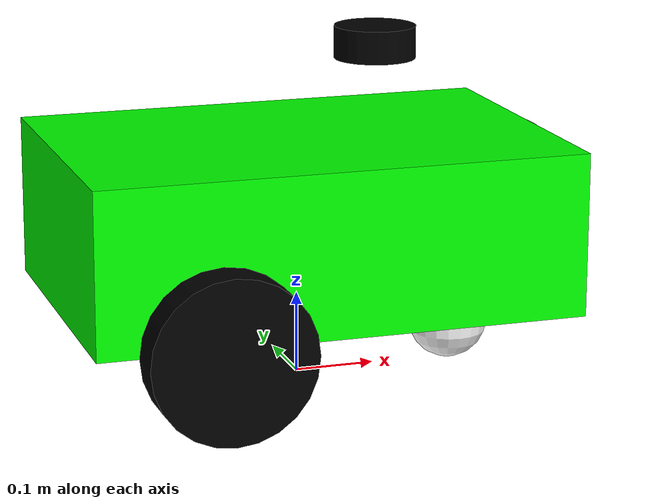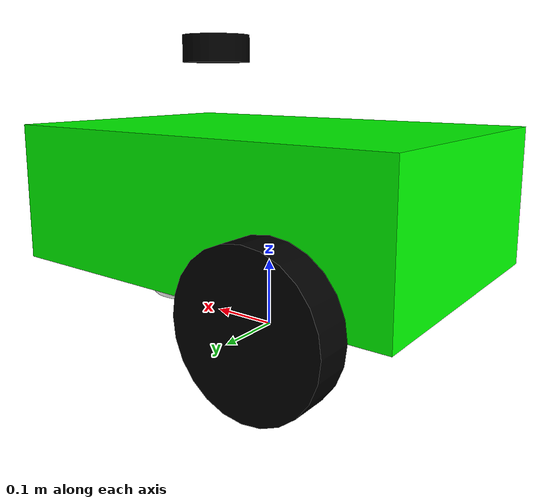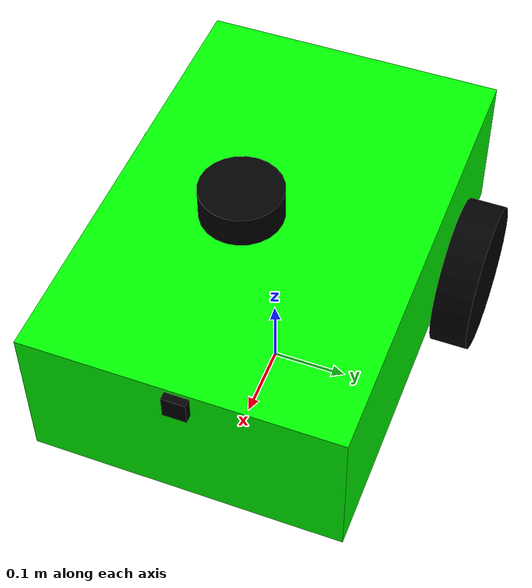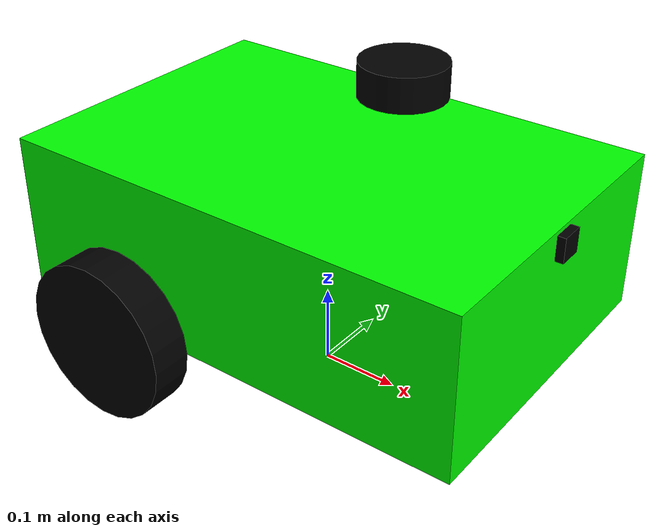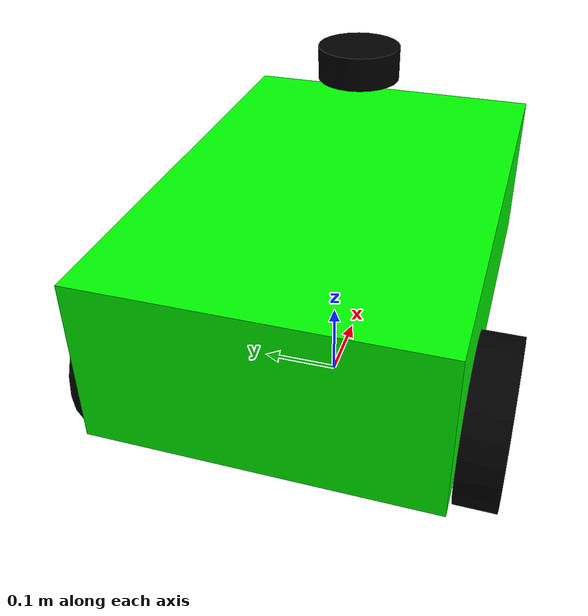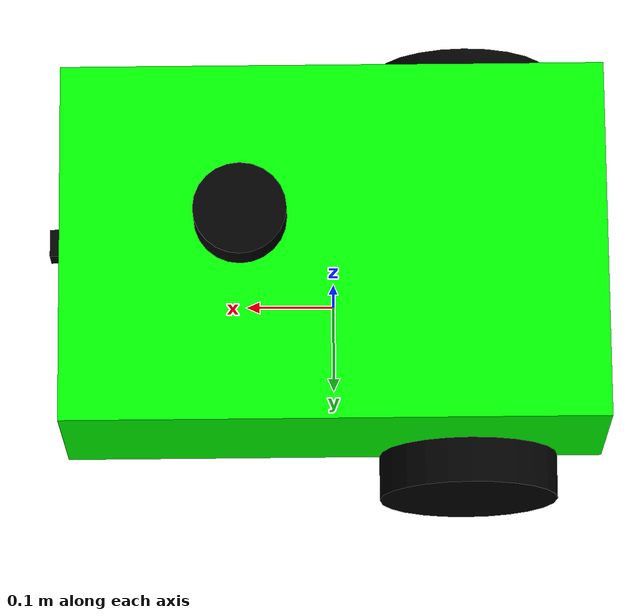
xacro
<?xml version="1.0"?>
<robot name="my_robot" xmlns:xacro="http://www.ros.org/wiki/xacro">

    <xacro:include filename="camera.xacro" />
    <xacro:include filename="lidar.xacro" />
    <xacro:include filename="common_properties.xacro" />
    <xacro:include filename="gazebo_plugins.xacro" />

    <xacro:property name="base_length" value="0.6" />
    <xacro:property name="base_width" value="0.4" />
    <xacro:property name="base_height" value="0.2" />
    <xacro:property name="wheel_radius" value="0.1" />
    <xacro:property name="wheel_length" value="0.05" />

    <link name="base_footprint" />

    <joint name="base_joint" type="fixed">
        <parent link="base_footprint"/>
        <child link="base_link"/>
        <origin xyz="0 0 0.2" rpy="0 0 0"/>
    </joint>

    <link name="base_link">
        <visual>
            <geometry> <box size="${base_length} ${base_width} ${base_height}"/> </geometry>
            <material name="green"/>
        </visual>
        <collision>
            <geometry> <box size="${base_length} ${base_width} ${base_height}"/> </geometry>
        </collision>
        <xacro:box_inertia m="5.0" x="${base_length}" y="${base_width}" z="${base_height}"
                           o_xyz="0 0 0" o_rpy="0 0 0" />
    </link>

    <xacro:macro name="wheel_link" params="prefix y_offset">
        <link name="${prefix}_wheel">
            <visual>
                <geometry> <cylinder radius="${wheel_radius}" length="${wheel_length}"/> </geometry>
                <material name="black"/>
            </visual>
            <collision>
                <geometry> <cylinder radius="${wheel_radius}" length="${wheel_length}"/> </geometry>
            </collision>
            <xacro:cylinder_inertia m="1.0" r="${wheel_radius}" h="${wheel_length}"
                                    o_xyz="0 0 0" o_rpy="0 0 0" />
        </link>

        <joint name="${prefix}_wheel_joint" type="continuous">
            <parent link="base_link"/>
            <child link="${prefix}_wheel"/>
            <origin xyz="-0.15 ${y_offset} -0.1" rpy="${pi/2} 0 0"/>
            <axis xyz="0 0 -1"/>
        </joint>
    </xacro:macro>

    <xacro:wheel_link prefix="left" y_offset="0.225" />
    <xacro:wheel_link prefix="right" y_offset="-0.225" />

    <link name="caster_wheel">
        <visual>
            <geometry> <sphere radius="${wheel_radius / 2.0}"/> </geometry>
            <material name="white"/>
        </visual>
        <collision>
            <geometry> <sphere radius="${wheel_radius / 2.0}"/> </geometry>
        </collision>
        <xacro:sphere_inertia m="0.5" r="${wheel_radius / 2.0}" o_xyz="0 0 0" o_rpy="0 0 0" />
    </link>

    <joint name="caster_joint" type="fixed">
        <parent link="base_link"/>
        <child link="caster_wheel"/>
        <origin xyz="0.2 0 -0.15" rpy="0 0 0"/>
    </joint>

</robot>

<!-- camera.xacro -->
<robot xmlns:xacro="http://www.ros.org/wiki/xacro">

    <xacro:arg name="prefix" default="" />

    <joint name="$(arg prefix)camera_joint" type="fixed">
        <parent link="$(arg prefix)base_link"/>
        <child link="$(arg prefix)camera_link"/>
        <origin xyz="0.305 0 0.08" rpy="0 0 0"/>
    </joint>

    <link name="$(arg prefix)camera_link">
        <visual>
            <geometry> <box size="0.010 0.03 0.03"/> </geometry>
            <material name="black"/>
        </visual>
    </link>

    <gazebo reference="$(arg prefix)camera_link">
        <sensor type="camera" name="$(arg prefix)camera">
            <update_rate>30</update_rate>
            <visualize>true</visualize>

            <topic>$(arg prefix)camera/image_raw</topic>

            <gz_frame_id>$(arg prefix)camera_link</gz_frame_id>

            <camera>
                <horizontal_fov>1.089</horizontal_fov>
                <image>
                    <width>640</width>
                    <height>480</height>
                    <format>R8G8B8</format>
                </image>
                <clip>
                    <near>0.05</near>
                    <far>8.0</far>
                </clip>
            </camera>
        </sensor>
    </gazebo>
</robot>

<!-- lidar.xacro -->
<robot xmlns:xacro="http://www.ros.org/wiki/xacro">

    <xacro:arg name="prefix" default="" />

    <joint name="$(arg prefix)laser_joint" type="fixed">
        <parent link="$(arg prefix)base_link"/>
        <child link="$(arg prefix)laser_frame"/>
        <origin xyz="0.1 0 0.21" rpy="0 0 0"/>
    </joint>

    <link name="$(arg prefix)laser_frame">
        <visual>
            <geometry> <cylinder radius="0.05" length="0.04"/> </geometry>
            <material name="black"/>
        </visual>
    </link>

    <gazebo reference="$(arg prefix)laser_frame">
        <sensor type="gpu_lidar" name="$(arg prefix)lidar">
            <update_rate>10</update_rate>
            <visualize>true</visualize>

            <topic>$(arg prefix)scan</topic>

            <gz_frame_id>$(arg prefix)laser_frame</gz_frame_id>

            <lidar>
                <scan>
                    <horizontal>
                        <samples>640</samples>
                        <resolution>1</resolution>
                        <min_angle>-3.14</min_angle>
                        <max_angle>3.14</max_angle>
                    </horizontal>
                </scan>
                <range>
                    <min>0.1</min>
                    <max>10.0</max>
                </range>
            </lidar>
        </sensor>
    </gazebo>
</robot>

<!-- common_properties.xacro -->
<robot xmlns:xacro="http://www.ros.org/wiki/xacro">

    <material name="green"> <color rgba="0 1 0 1"/> </material>
    <material name="black"> <color rgba="0 0 0 1"/> </material>
    <material name="white"> <color rgba="1 1 1 1"/> </material>

    <xacro:macro name="box_inertia" params="m x y z o_xyz o_rpy">
        <inertial>
            <origin xyz="${o_xyz}" rpy="${o_rpy}" />
            <mass value="${m}" />
            <inertia ixx="${(m/12) * (y*y + z*z)}" ixy="0" ixz="0"
                     iyy="${(m/12) * (x*x + z*z)}" iyz="0"
                     izz="${(m/12) * (x*x + y*y)}" />
        </inertial>
    </xacro:macro>

    <xacro:macro name="cylinder_inertia" params="m r h o_xyz o_rpy">
        <inertial>
            <origin xyz="${o_xyz}" rpy="${o_rpy}" />
            <mass value="${m}" />
            <inertia ixx="${(m/12) * (3*r*r + h*h)}" ixy="0" ixz="0"
                     iyy="${(m/12) * (3*r*r + h*h)}" iyz="0"
                     izz="${(m/2) * (r*r)}" />
        </inertial>
    </xacro:macro>

    <xacro:macro name="sphere_inertia" params="m r o_xyz o_rpy">
        <inertial>
            <origin xyz="${o_xyz}" rpy="${o_rpy}" />
            <mass value="${m}" />
            <inertia ixx="${(2/5) * m * r * r}" ixy="0" ixz="0"
                     iyy="${(2/5) * m * r * r}" iyz="0"
                     izz="${(2/5) * m * r * r}" />
        </inertial>
    </xacro:macro>

</robot>
